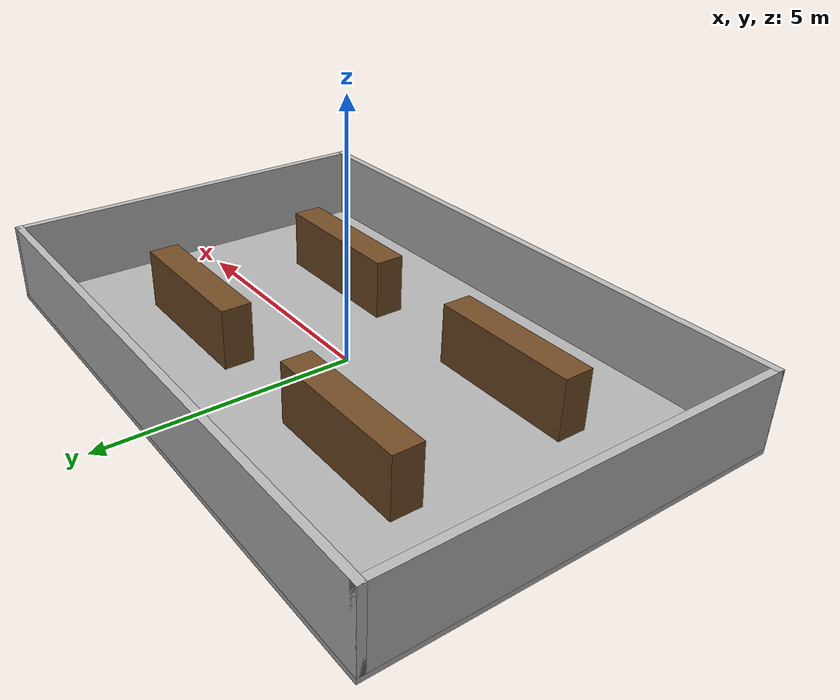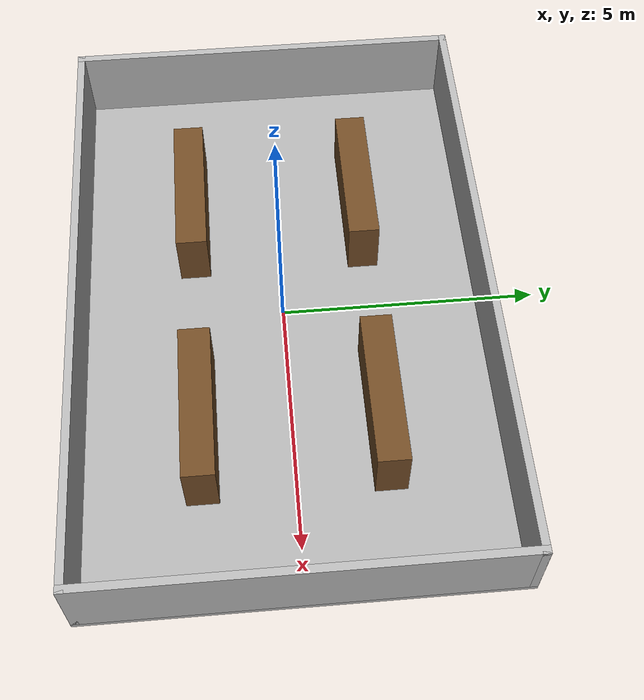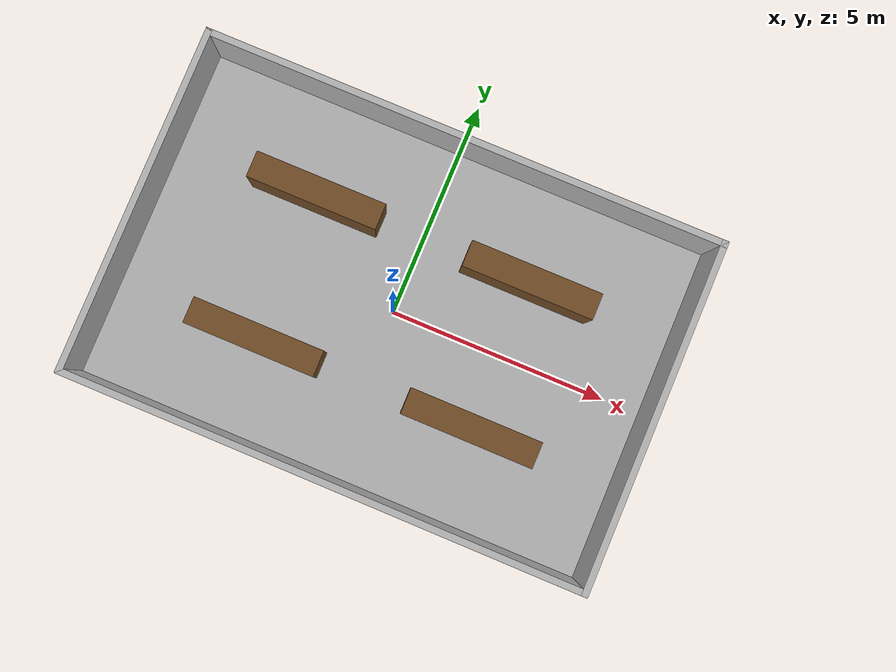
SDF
<?xml version="1.0" ?>
<sdf version="1.10">

  <world name="warehouse">
        <!-- Core Gazebo systems -->
    <plugin
      filename="gz-sim-physics-system"
      name="gz::sim::systems::Physics">
    </plugin>

    <plugin
      filename="gz-sim-user-commands-system"
      name="gz::sim::systems::UserCommands">
    </plugin>

    <plugin
      filename="gz-sim-scene-broadcaster-system"
      name="gz::sim::systems::SceneBroadcaster">
    </plugin>

    <!-- Rendering sensors such as GPU LiDAR -->
    <plugin
      filename="gz-sim-sensors-system"
      name="gz::sim::systems::Sensors">
      <render_engine>ogre</render_engine>
    </plugin>
    <!-- Physics -->
    <physics name="physics" type="ignored">
      <max_step_size>0.001</max_step_size>
      <real_time_factor>1.0</real_time_factor>
    </physics>

    <!-- Ánh sáng -->
    <light type="directional" name="sun">
      <cast_shadows>true</cast_shadows>

      <pose>0 0 10 0 0 0</pose>

      <diffuse>0.8 0.8 0.8 1</diffuse>
      <specular>0.2 0.2 0.2 1</specular>

      <direction>-0.5 0.1 -0.9</direction>
    </light>

    <!-- Mặt sàn -->
    <model name="floor">
      <static>true</static>

      <link name="floor_link">

        <collision name="floor_collision">
          <geometry>
            <box>
              <size>12 8 0.1</size>
            </box>
          </geometry>
        </collision>

        <visual name="floor_visual">
          <geometry>
            <box>
              <size>12 8 0.1</size>
            </box>
          </geometry>

          <material>
            <ambient>0.7 0.7 0.7 1</ambient>
            <diffuse>0.7 0.7 0.7 1</diffuse>
          </material>
        </visual>

      </link>

      <pose>0 0 -0.05 0 0 0</pose>
    </model>

    <!-- Tường phía Bắc -->
    <model name="wall_north">
      <static>true</static>

      <link name="link">

        <collision name="collision">
          <geometry>
            <box>
              <size>12 0.15 1.5</size>
            </box>
          </geometry>
        </collision>

        <visual name="visual">
          <geometry>
            <box>
              <size>12 0.15 1.5</size>
            </box>
          </geometry>
        </visual>

      </link>

      <pose>0 3.925 0.75 0 0 0</pose>
    </model>

    <!-- Tường phía Nam -->
    <model name="wall_south">
      <static>true</static>

      <link name="link">

        <collision name="collision">
          <geometry>
            <box>
              <size>12 0.15 1.5</size>
            </box>
          </geometry>
        </collision>

        <visual name="visual">
          <geometry>
            <box>
              <size>12 0.15 1.5</size>
            </box>
          </geometry>
        </visual>

      </link>

      <pose>0 -3.925 0.75 0 0 0</pose>
    </model>

    <!-- Tường phía Tây -->
    <model name="wall_west">
      <static>true</static>

      <link name="link">

        <collision name="collision">
          <geometry>
            <box>
              <size>0.15 8 1.5</size>
            </box>
          </geometry>
        </collision>

        <visual name="visual">
          <geometry>
            <box>
              <size>0.15 8 1.5</size>
            </box>
          </geometry>
        </visual>

      </link>

      <pose>-5.925 0 0.75 0 0 0</pose>
    </model>

    <!-- Tường phía Đông -->
    <model name="wall_east">
      <static>true</static>

      <link name="link">

        <collision name="collision">
          <geometry>
            <box>
              <size>0.15 8 1.5</size>
            </box>
          </geometry>
        </collision>

        <visual name="visual">
          <geometry>
            <box>
              <size>0.15 8 1.5</size>
            </box>
          </geometry>
        </visual>

      </link>

      <pose>5.925 0 0.75 0 0 0</pose>
    </model>

    <!-- Kệ hàng 1 -->
    <model name="shelf_1">
      <static>true</static>

      <link name="link">

        <collision name="collision">
          <geometry>
            <box>
              <size>3 0.6 1.2</size>
            </box>
          </geometry>
        </collision>

        <visual name="visual">
          <geometry>
            <box>
              <size>3 0.6 1.2</size>
            </box>
          </geometry>

          <material>
            <ambient>0.45 0.30 0.15 1</ambient>
            <diffuse>0.45 0.30 0.15 1</diffuse>
          </material>
        </visual>

      </link>

      <pose>-2.5 1.7 0.6 0 0 0</pose>
    </model>

    <!-- Kệ hàng 2 -->
    <model name="shelf_2">
      <static>true</static>

      <link name="link">

        <collision name="collision">
          <geometry>
            <box>
              <size>3 0.6 1.2</size>
            </box>
          </geometry>
        </collision>

        <visual name="visual">
          <geometry>
            <box>
              <size>3 0.6 1.2</size>
            </box>
          </geometry>

          <material>
            <ambient>0.45 0.30 0.15 1</ambient>
            <diffuse>0.45 0.30 0.15 1</diffuse>
          </material>
        </visual>

      </link>

      <pose>2.5 1.7 0.6 0 0 0</pose>
    </model>

    <!-- Kệ hàng 3 -->
    <model name="shelf_3">
      <static>true</static>

      <link name="link">

        <collision name="collision">
          <geometry>
            <box>
              <size>3 0.6 1.2</size>
            </box>
          </geometry>
        </collision>

        <visual name="visual">
          <geometry>
            <box>
              <size>3 0.6 1.2</size>
            </box>
          </geometry>

          <material>
            <ambient>0.45 0.30 0.15 1</ambient>
            <diffuse>0.45 0.30 0.15 1</diffuse>
          </material>
        </visual>

      </link>

      <pose>-2.5 -1.7 0.6 0 0 0</pose>
    </model>

    <!-- Kệ hàng 4 -->
    <model name="shelf_4">
      <static>true</static>

      <link name="link">

        <collision name="collision">
          <geometry>
            <box>
              <size>3 0.6 1.2</size>
            </box>
          </geometry>
        </collision>

        <visual name="visual">
          <geometry>
            <box>
              <size>3 0.6 1.2</size>
            </box>
          </geometry>

          <material>
            <ambient>0.45 0.30 0.15 1</ambient>
            <diffuse>0.45 0.30 0.15 1</diffuse>
          </material>
        </visual>

      </link>

      <pose>2.5 -1.7 0.6 0 0 0</pose>
    </model>

  </world>

</sdf>
